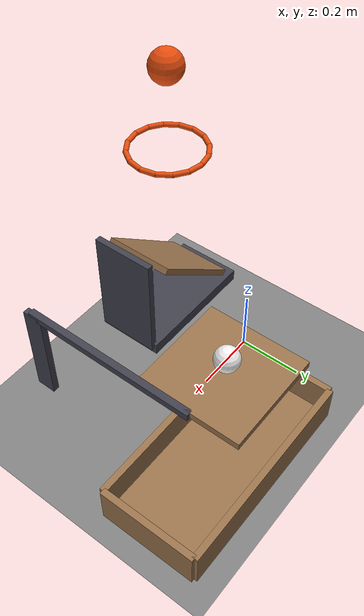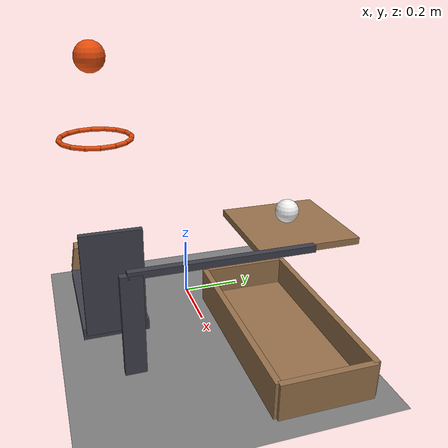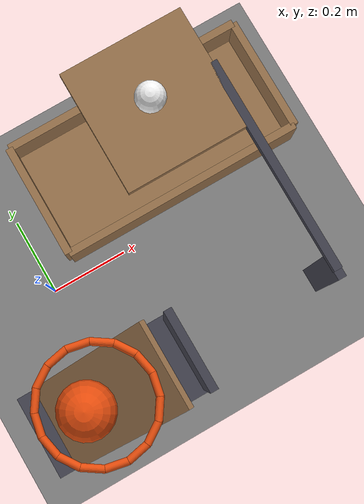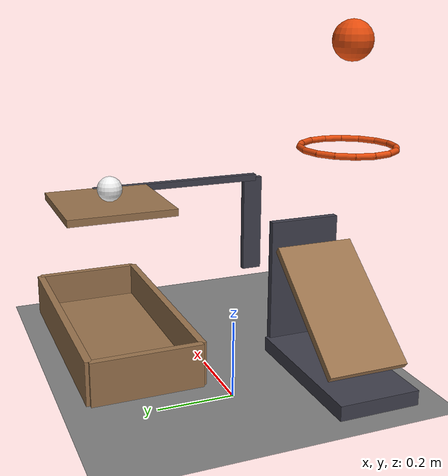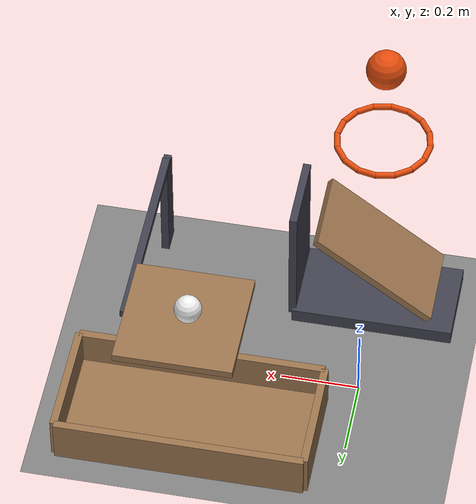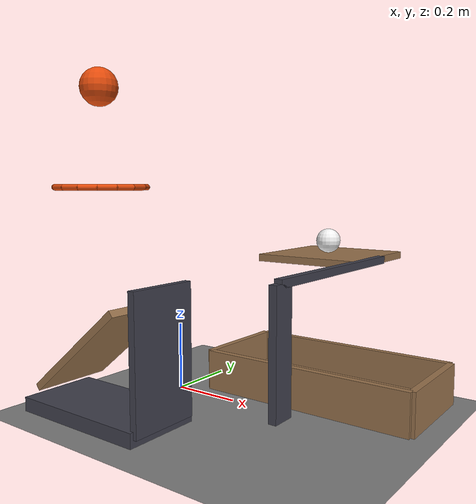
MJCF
<mujoco model="drop_driven_cart_and_release_flap">
  <compiler angle="radian"/>
  <option timestep="0.002"/>
  <worldbody>
    <geom name="floor" type="plane" size="4 4 0.1" friction="0.01 0.001 0.001"/>
    <body name="hoop">
      <geom name="hoop_00" type="capsule" size="0.008" fromto="0.118 -0.3 0.62 0.109018 -0.254843 0.62" rgba="0.9 0.3 0.05 1"/>
      <geom name="hoop_01" type="capsule" size="0.008" fromto="0.109018 -0.254843 0.62 0.0834386 -0.216561 0.62" rgba="0.9 0.3 0.05 1"/>
      <geom name="hoop_02" type="capsule" size="0.008" fromto="0.0834386 -0.216561 0.62 0.0451566 -0.190982 0.62" rgba="0.9 0.3 0.05 1"/>
      <geom name="hoop_03" type="capsule" size="0.008" fromto="0.0451566 -0.190982 0.62 7.22542e-18 -0.182 0.62" rgba="0.9 0.3 0.05 1"/>
      <geom name="hoop_04" type="capsule" size="0.008" fromto="7.22542e-18 -0.182 0.62 -0.0451566 -0.190982 0.62" rgba="0.9 0.3 0.05 1"/>
      <geom name="hoop_05" type="capsule" size="0.008" fromto="-0.0451566 -0.190982 0.62 -0.0834386 -0.216561 0.62" rgba="0.9 0.3 0.05 1"/>
      <geom name="hoop_06" type="capsule" size="0.008" fromto="-0.0834386 -0.216561 0.62 -0.109018 -0.254843 0.62" rgba="0.9 0.3 0.05 1"/>
      <geom name="hoop_07" type="capsule" size="0.008" fromto="-0.109018 -0.254843 0.62 -0.118 -0.3 0.62" rgba="0.9 0.3 0.05 1"/>
      <geom name="hoop_08" type="capsule" size="0.008" fromto="-0.118 -0.3 0.62 -0.109018 -0.345157 0.62" rgba="0.9 0.3 0.05 1"/>
      <geom name="hoop_09" type="capsule" size="0.008" fromto="-0.109018 -0.345157 0.62 -0.0834386 -0.383439 0.62" rgba="0.9 0.3 0.05 1"/>
      <geom name="hoop_10" type="capsule" size="0.008" fromto="-0.0834386 -0.383439 0.62 -0.0451566 -0.409018 0.62" rgba="0.9 0.3 0.05 1"/>
      <geom name="hoop_11" type="capsule" size="0.008" fromto="-0.0451566 -0.409018 0.62 -2.16762e-17 -0.418 0.62" rgba="0.9 0.3 0.05 1"/>
      <geom name="hoop_12" type="capsule" size="0.008" fromto="-2.16762e-17 -0.418 0.62 0.0451566 -0.409018 0.62" rgba="0.9 0.3 0.05 1"/>
      <geom name="hoop_13" type="capsule" size="0.008" fromto="0.0451566 -0.409018 0.62 0.0834386 -0.383439 0.62" rgba="0.9 0.3 0.05 1"/>
      <geom name="hoop_14" type="capsule" size="0.008" fromto="0.0834386 -0.383439 0.62 0.109018 -0.345157 0.62" rgba="0.9 0.3 0.05 1"/>
      <geom name="hoop_15" type="capsule" size="0.008" fromto="0.109018 -0.345157 0.62 0.118 -0.3 0.62" rgba="0.9 0.3 0.05 1"/>
    </body>
    <body name="cart" pos="0 -0.3 0.02">
      <freejoint/>
      <geom name="cart" type="box" pos="0 0 0" size="0.21 0.11 0.02" mass="0.6" friction="0.01 0.001 0.001" solref="0.01 1" rgba="0.25 0.25 0.3 1"/>
      <geom name="cart back" type="box" pos="0 0 0.18" size="0.192094 0.11 0.01" euler="0 -0.674741 0" mass="0.25" friction="0.05 0.001 0.001" solref="0.01 1" rgba="0.6 0.45 0.3 1"/>
      <geom name="cart bumper" type="box" pos="0.21 0 0.18" size="0.01 0.1 0.18" mass="0.06" friction="0.02 0.005 0.0001" solref="0.01 1" rgba="0.25 0.25 0.3 1"/>
    </body>
    <body name="flap" pos="0.56 0.2 0.42">
      <joint name="release_hinge" type="hinge" pos="0 0 0" axis="0 1 0" limited="true" range="-1.22173 0.0872665" stiffness="0.136145" springref="1.5708" damping="0.008"/>
      <geom name="flap" type="box" pos="-0.15 0 0" size="0.15 0.15 0.01" mass="0.06" friction="0.5 0.002 0.001" solref="0.01 1" rgba="0.6 0.45 0.3 1"/>
      <geom name="flap crossbar" type="box" pos="0 -0.25 0" size="0.01 0.26 0.01" mass="0.02" solref="0.01 1" rgba="0.25 0.25 0.3 1"/>
      <geom name="flap trigger" type="box" pos="0 -0.5 -0.15" size="0.01 0.03 0.15" mass="0.01" friction="0.02 0.005 0.0001" solref="0.01 1" rgba="0.25 0.25 0.3 1"/>
    </body>
    <body name="box">
      <geom name="box_base" type="box" pos="0.4 0.2 0.0125" size="0.32 0.15 0.0125" friction="0.8 0.01 0.01" solref="0.01 1" rgba="0.6 0.45 0.3 1"/>
      <geom name="box_near_wall" type="box" pos="0.08 0.2 0.06" size="0.01 0.15 0.06" friction="0.8 0.01 0.01" solref="0.01 1" rgba="0.6 0.45 0.3 1"/>
      <geom name="box_far_wall" type="box" pos="0.72 0.2 0.06" size="0.01 0.15 0.06" friction="0.8 0.01 0.01" solref="0.01 1" rgba="0.6 0.45 0.3 1"/>
      <geom name="box_left_wall" type="box" pos="0.4 0.35 0.06" size="0.32 0.01 0.06" friction="0.8 0.01 0.01" solref="0.01 1" rgba="0.6 0.45 0.3 1"/>
      <geom name="box_right_wall" type="box" pos="0.4 0.05 0.06" size="0.32 0.01 0.06" friction="0.8 0.01 0.01" solref="0.01 1" rgba="0.6 0.45 0.3 1"/>
    </body>
    <body name="ball2" pos="0.4 0.2 0.465">
      <freejoint/>
      <geom name="ball2" type="sphere" pos="0 0 0" size="0.035" mass="0.08" condim="6" friction="0.6 0.01 0.006" solref="0.01 1" rgba="0.95 0.95 0.95 1"/>
    </body>
    <body name="ball1" pos="0 -0.3 0.87684">
      <freejoint/>
      <geom name="ball1" type="sphere" pos="0 0 0" size="0.05" mass="1.5" condim="6" friction="0.05 0.001 0.001" solref="0.01 1" rgba="0.9 0.3 0.05 1"/>
    </body>
  </worldbody>
  <keyframe>
    <key name="start" qpos="0 -0.3 0.02 1 0 0 0 0 0.4 0.2 0.465 1 0 0 0 0 -0.3 0.87684 1 0 0 0" qvel="0 0 0 0 0 0 0 0 0 0 0 0 0 0 0 0 0 0 0"/>
  </keyframe>
</mujoco>
